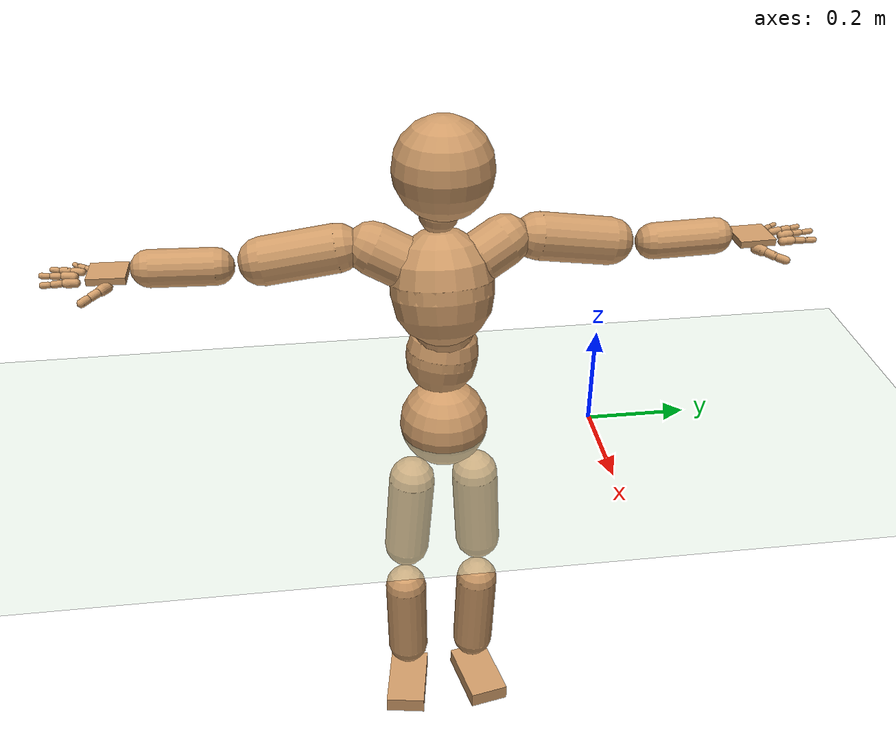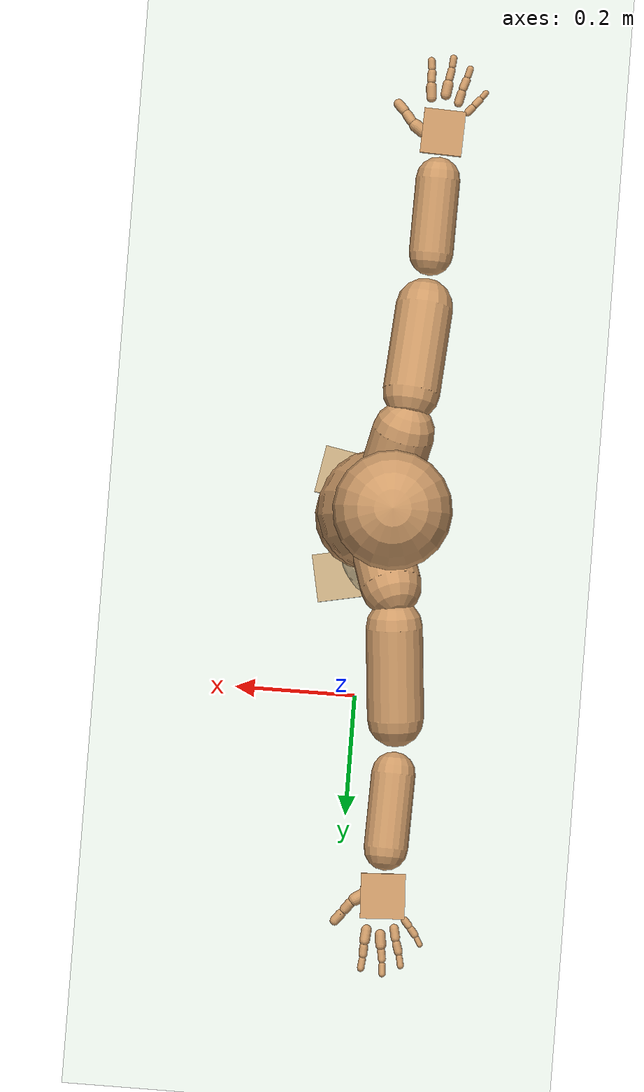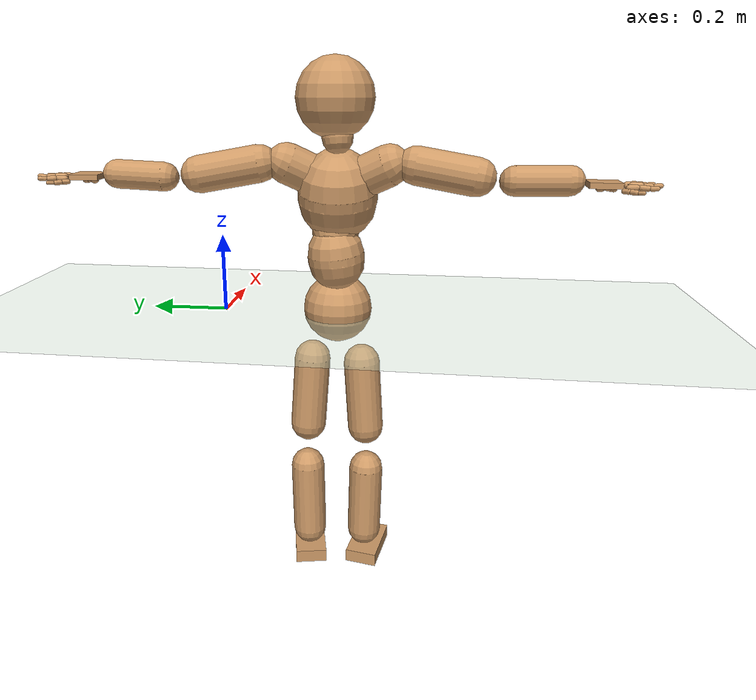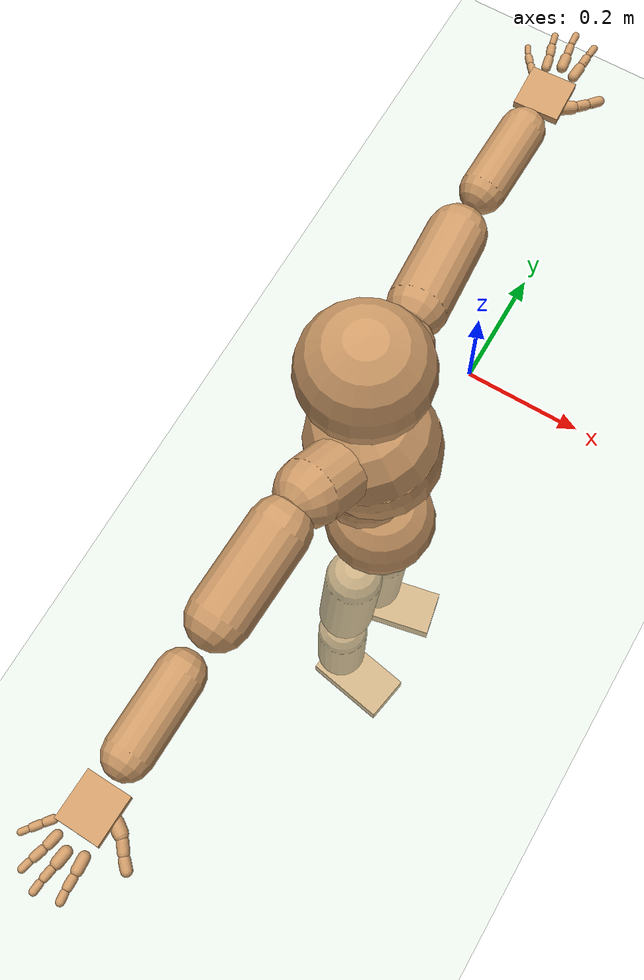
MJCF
<mujoco model="humanoid">
  <compiler coordinate="local" angle="radian"/>
  <default>
    <joint damping="0.0" armature="0.01" stiffness="0.0" limited="true"/>
    <geom conaffinity="1" condim="3" contype="7" margin="0.001" rgba="0.8 0.6 .4 1"/>
  </default>
  <asset>
    <texture type="skybox" builtin="gradient" rgb1=".4 .5 .6" rgb2="0 0 0" width="100" height="100"/>
    <texture builtin="flat" height="1278" mark="cross" markrgb="1 1 1" name="texgeom" random="0.01" rgb1="0.8 0.6 0.4" rgb2="0.8 0.6 0.4" type="cube" width="127"/>
    <texture builtin="checker" height="100" name="texplane" rgb1="0 0 0" rgb2="0.8 0.8 0.8" type="2d" width="100"/>
    <material name="MatPlane" reflectance="0.5" shininess="1" specular="1" texrepeat="60 60" texture="texplane"/>
    <material name="geom" texture="texgeom" texuniform="true"/>
  </asset>
  <worldbody>
    <light cutoff="100" diffuse="1 1 1" dir="-0 0 -1.3" directional="true" exponent="1" pos="0 0 1.3" specular=".1 .1 .1"/>
    <geom conaffinity="1" condim="3" name="floor" pos="0 0 0" rgba="0.8 0.9 0.8 1" size="100 100 .2" type="plane" material="MatPlane"/>
    <body name="Pelvis" pos="0.0002 -0.3025 0.017">
      <freejoint name="Pelvis"/>
      <geom type="sphere" contype="1" conaffinity="1" density="500" size="0.0896" pos="0.0000 0.0000 0.0000" name="Pelvis"/>
      <body name="L_Hip" pos="-0.0046 0.0632 -0.0802">
        <joint name="L_Hip_x" type="hinge" pos="0 0 0" axis="1 0 0" stiffness="800" damping="80" armature="0.02" range="-180.0000 180.0000"/>
        <joint name="L_Hip_y" type="hinge" pos="0 0 0" axis="0 1 0" stiffness="800" damping="80" armature="0.02" range="-180.0000 180.0000"/>
        <joint name="L_Hip_z" type="hinge" pos="0 0 0" axis="0 0 1" stiffness="800" damping="80" armature="0.02" range="-180.0000 180.0000"/>
        <geom type="capsule" contype="1" conaffinity="1" density="500" fromto="-0.0037 0.0038 -0.0629 -0.0148 0.0153 -0.2518" size="0.0482" name="L_Hip"/>
        <body name="L_Knee" pos="-0.0186 0.0192 -0.3147">
          <joint name="L_Knee_x" type="hinge" pos="0 0 0" axis="1 0 0" stiffness="800" damping="80" armature="0.02" range="-180.0000 180.0000"/>
          <joint name="L_Knee_y" type="hinge" pos="0 0 0" axis="0 1 0" stiffness="800" damping="80" armature="0.02" range="-180.0000 180.0000"/>
          <joint name="L_Knee_z" type="hinge" pos="0 0 0" axis="0 0 1" stiffness="800" damping="80" armature="0.02" range="-180.0000 180.0000"/>
          <geom type="capsule" contype="1" conaffinity="1" density="500" fromto="-0.0027 -0.0018 -0.0662 -0.0110 -0.0071 -0.2647" size="0.0459" name="L_Knee"/>
          <body name="L_Ankle" pos="-0.0137 -0.0089 -0.3309">
            <joint name="L_Ankle_x" type="hinge" pos="0 0 0" axis="1 0 0" stiffness="800" damping="80" armature="0.02" range="-180.0000 180.0000"/>
            <joint name="L_Ankle_y" type="hinge" pos="0 0 0" axis="0 1 0" stiffness="800" damping="80" armature="0.02" range="-180.0000 180.0000"/>
            <joint name="L_Ankle_z" type="hinge" pos="0 0 0" axis="0 0 1" stiffness="800" damping="80" armature="0.02" range="-180.0000 180.0000"/>
            <geom type="box" contype="1" conaffinity="1" density="500" pos="0.0488 0.0100 -0.0192" size="0.0767 0.0433 0.0181" quat="0.9949 0.0000 0.0000 0.1011" name="L_Ankle"/>
            <body name="L_Toe" pos="0.0976 0.02 -0.0383">
              <joint name="L_Toe_x" type="hinge" pos="0 0 0" axis="1 0 0" stiffness="500" damping="50" armature="0.02" range="-180.0000 180.0000"/>
              <joint name="L_Toe_y" type="hinge" pos="0 0 0" axis="0 1 0" stiffness="500" damping="50" armature="0.02" range="-180.0000 180.0000"/>
              <joint name="L_Toe_z" type="hinge" pos="0 0 0" axis="0 0 1" stiffness="500" damping="50" armature="0.02" range="-180.0000 180.0000"/>
              <geom type="box" contype="1" conaffinity="1" density="500" pos="0.0000 0.0000 0.0204" size="0.0009 0.0022 0.001" quat="0.9941 0.0000 0.0000 0.1087" name="L_Toe"/>
            </body>
          </body>
        </body>
      </body>
      <body name="R_Hip" pos="-0.0063 -0.0618 -0.0862">
        <joint name="R_Hip_x" type="hinge" pos="0 0 0" axis="1 0 0" stiffness="800" damping="80" armature="0.02" range="-180.0000 180.0000"/>
        <joint name="R_Hip_y" type="hinge" pos="0 0 0" axis="0 1 0" stiffness="800" damping="80" armature="0.02" range="-180.0000 180.0000"/>
        <joint name="R_Hip_z" type="hinge" pos="0 0 0" axis="0 0 1" stiffness="800" damping="80" armature="0.02" range="-180.0000 180.0000"/>
        <geom type="capsule" contype="1" conaffinity="1" density="500" fromto="-0.0026 -0.0045 -0.0621 -0.0103 -0.0181 -0.2485" size="0.048" name="R_Hip"/>
        <body name="R_Knee" pos="-0.0129 -0.0226 -0.3106">
          <joint name="R_Knee_x" type="hinge" pos="0 0 0" axis="1 0 0" stiffness="800" damping="80" armature="0.02" range="-180.0000 180.0000"/>
          <joint name="R_Knee_y" type="hinge" pos="0 0 0" axis="0 1 0" stiffness="800" damping="80" armature="0.02" range="-180.0000 180.0000"/>
          <joint name="R_Knee_z" type="hinge" pos="0 0 0" axis="0 0 1" stiffness="800" damping="80" armature="0.02" range="-180.0000 180.0000"/>
          <geom type="capsule" contype="1" conaffinity="1" density="500" fromto="-0.0019 0.0009 -0.0646 -0.0078 0.0036 -0.2583" size="0.0459" name="R_Knee"/>
          <body name="R_Ankle" pos="-0.0097 0.0044 -0.3229">
            <joint name="R_Ankle_x" type="hinge" pos="0 0 0" axis="1 0 0" stiffness="800" damping="80" armature="0.02" range="-180.0000 180.0000"/>
            <joint name="R_Ankle_y" type="hinge" pos="0 0 0" axis="0 1 0" stiffness="800" damping="80" armature="0.02" range="-180.0000 180.0000"/>
            <joint name="R_Ankle_z" type="hinge" pos="0 0 0" axis="0 0 1" stiffness="800" damping="80" armature="0.02" range="-180.0000 180.0000"/>
            <geom type="box" contype="1" conaffinity="1" density="500" pos="0.0459 -0.0082 -0.0209" size="0.0767 0.0433 0.0181" quat="0.9961 0.0000 0.0000 -0.0887" name="R_Ankle"/>
            <body name="R_Toe" pos="0.0917 -0.0165 -0.0418">
              <joint name="R_Toe_x" type="hinge" pos="0 0 0" axis="1 0 0" stiffness="500" damping="50" armature="0.02" range="-180.0000 180.0000"/>
              <joint name="R_Toe_y" type="hinge" pos="0 0 0" axis="0 1 0" stiffness="500" damping="50" armature="0.02" range="-180.0000 180.0000"/>
              <joint name="R_Toe_z" type="hinge" pos="0 0 0" axis="0 0 1" stiffness="500" damping="50" armature="0.02" range="-180.0000 180.0000"/>
              <geom type="box" contype="1" conaffinity="1" density="500" pos="0.0000 0.0000 0.0222" size="0.0009 0.0022 0.001" quat="0.9971 0.0000 0.0000 -0.0765" name="R_Toe"/>
            </body>
          </body>
        </body>
      </body>
      <body name="Torso" pos="-0.0278 -0.0051 0.0904">
        <joint name="Torso_x" type="hinge" pos="0 0 0" axis="1 0 0" stiffness="1000" damping="100" armature="0.02" range="-180.0000 180.0000"/>
        <joint name="Torso_y" type="hinge" pos="0 0 0" axis="0 1 0" stiffness="1000" damping="100" armature="0.02" range="-180.0000 180.0000"/>
        <joint name="Torso_z" type="hinge" pos="0 0 0" axis="0 0 1" stiffness="1000" damping="100" armature="0.02" range="-180.0000 180.0000"/>
        <geom type="capsule" contype="1" conaffinity="1" density="500" fromto="-0.0043 0.0065 0.0622 -0.0029 0.0043 0.0415" size="0.0718" name="Torso"/>
        <body name="Spine" pos="-0.0072 0.0108 0.1036">
          <joint name="Spine_x" type="hinge" pos="0 0 0" axis="1 0 0" stiffness="1000" damping="100" armature="0.02" range="-180.0000 180.0000"/>
          <joint name="Spine_y" type="hinge" pos="0 0 0" axis="0 1 0" stiffness="1000" damping="100" armature="0.02" range="-180.0000 180.0000"/>
          <joint name="Spine_z" type="hinge" pos="0 0 0" axis="0 0 1" stiffness="1000" damping="100" armature="0.02" range="-180.0000 180.0000"/>
          <geom type="capsule" contype="1" conaffinity="1" density="500" fromto="0.0206 -0.0037 0.0233 0.0137 -0.0025 0.0155" size="0.0597" name="Spine"/>
          <body name="Chest" pos="0.0343 -0.0062 0.0388">
            <joint name="Chest_x" type="hinge" pos="0 0 0" axis="1 0 0" stiffness="1000" damping="100" armature="0.02" range="-180.0000 180.0000"/>
            <joint name="Chest_y" type="hinge" pos="0 0 0" axis="0 1 0" stiffness="1000" damping="100" armature="0.02" range="-180.0000 180.0000"/>
            <joint name="Chest_z" type="hinge" pos="0 0 0" axis="0 0 1" stiffness="1000" damping="100" armature="0.02" range="-180.0000 180.0000"/>
            <geom type="capsule" contype="1" conaffinity="1" density="500" fromto="-0.0195 -0.0016 0.0778 -0.0130 -0.0011 0.0519" size="0.0996" name="Chest"/>
            <body name="Neck" pos="-0.048 -0.0058 0.1781">
              <joint name="Neck_x" type="hinge" pos="0 0 0" axis="1 0 0" stiffness="500" damping="50" armature="0.02" range="-180.0000 180.0000"/>
              <joint name="Neck_y" type="hinge" pos="0 0 0" axis="0 1 0" stiffness="500" damping="50" armature="0.02" range="-180.0000 180.0000"/>
              <joint name="Neck_z" type="hinge" pos="0 0 0" axis="0 0 1" stiffness="500" damping="50" armature="0.02" range="-180.0000 180.0000"/>
              <geom type="capsule" contype="1" conaffinity="1" density="500" fromto="0.0025 0.0018 0.0227 0.0099 0.0072 0.0909" size="0.0381" name="Neck"/>
              <body name="Head" pos="0.0124 0.009 0.1136">
                <joint name="Head_x" type="hinge" pos="0 0 0" axis="1 0 0" stiffness="500" damping="50" armature="0.02" range="-180.0000 180.0000"/>
                <joint name="Head_y" type="hinge" pos="0 0 0" axis="0 1 0" stiffness="500" damping="50" armature="0.02" range="-180.0000 180.0000"/>
                <joint name="Head_z" type="hinge" pos="0 0 0" axis="0 0 1" stiffness="500" damping="50" armature="0.02" range="-180.0000 180.0000"/>
                <geom type="sphere" contype="1" conaffinity="1" density="500" size="0.0952" pos="0.0000 0.0000 0.0000" name="Head"/>
              </body>
            </body>
            <body name="L_Thorax" pos="-0.0215 0.0528 0.1073">
              <joint name="L_Thorax_x" type="hinge" pos="0 0 0" axis="1 0 0" stiffness="500" damping="50" armature="0.02" range="-180.0000 180.0000"/>
              <joint name="L_Thorax_y" type="hinge" pos="0 0 0" axis="0 1 0" stiffness="500" damping="50" armature="0.02" range="-180.0000 180.0000"/>
              <joint name="L_Thorax_z" type="hinge" pos="0 0 0" axis="0 0 1" stiffness="500" damping="50" armature="0.02" range="-180.0000 180.0000"/>
              <geom type="capsule" contype="1" conaffinity="1" density="500" fromto="-0.0056 0.0169 0.0083 -0.0223 0.0675 0.0334" size="0.0496" name="L_Thorax"/>
              <body name="L_Shoulder" pos="-0.0279 0.0844 0.0417">
                <joint name="L_Shoulder_x" type="hinge" pos="0 0 0" axis="1 0 0" stiffness="500" damping="50" armature="0.02" range="-180.0000 180.0000"/>
                <joint name="L_Shoulder_y" type="hinge" pos="0 0 0" axis="0 1 0" stiffness="500" damping="50" armature="0.02" range="-180.0000 180.0000"/>
                <joint name="L_Shoulder_z" type="hinge" pos="0 0 0" axis="0 0 1" stiffness="500" damping="50" armature="0.02" range="-180.0000 180.0000"/>
                <geom type="capsule" contype="1" conaffinity="1" density="500" fromto="-0.0046 0.0486 -0.0087 -0.0184 0.1946 -0.0348" size="0.046" name="L_Shoulder"/>
                <body name="L_Elbow" pos="-0.023 0.2432 -0.0435">
                  <joint name="L_Elbow_x" type="hinge" pos="0 0 0" axis="1 0 0" stiffness="500" damping="50" armature="0.02" range="-720.0000 720.0000"/>
                  <joint name="L_Elbow_y" type="hinge" pos="0 0 0" axis="0 1 0" stiffness="500" damping="50" armature="0.02" range="-720.0000 720.0000"/>
                  <joint name="L_Elbow_z" type="hinge" pos="0 0 0" axis="0 0 1" stiffness="500" damping="50" armature="0.02" range="-720.0000 720.0000"/>
                  <geom type="capsule" contype="1" conaffinity="1" density="500" fromto="0.0010 0.0402 0.0016 0.0038 0.1606 0.0064" size="0.0356" name="L_Elbow"/>
                  <body name="L_Wrist" pos="0.0048 0.2008 0.008">
                    <joint name="L_Wrist_x" type="hinge" pos="0 0 0" axis="1 0 0" stiffness="300" damping="30" armature="0.02" range="-180.0000 180.0000"/>
                    <joint name="L_Wrist_y" type="hinge" pos="0 0 0" axis="0 1 0" stiffness="300" damping="30" armature="0.02" range="-180.0000 180.0000"/>
                    <joint name="L_Wrist_z" type="hinge" pos="0 0 0" axis="0 0 1" stiffness="300" damping="30" armature="0.02" range="-180.0000 180.0000"/>
                    <geom type="box" contype="1" conaffinity="1" density="500" pos="-0.0019 0.0368 -0.0073" size="0.0362 0.0358 0.0066" quat="0.7253 0.0000 0.0000 -0.6884" name="L_Wrist"/>
                    <body name="L_Index1" pos="0.0194 0.0871 -0.0125">
                      <joint name="L_Index1_x" type="hinge" pos="0 0 0" axis="1 0 0" stiffness="100" damping="10" armature="0.02" range="-180.0000 180.0000"/>
                      <joint name="L_Index1_y" type="hinge" pos="0 0 0" axis="0 1 0" stiffness="100" damping="10" armature="0.02" range="-180.0000 180.0000"/>
                      <joint name="L_Index1_z" type="hinge" pos="0 0 0" axis="0 0 1" stiffness="100" damping="10" armature="0.02" range="-180.0000 180.0000"/>
                      <geom type="capsule" contype="1" conaffinity="1" density="500" fromto="0.0005 0.0058 0.0005 0.0021 0.0233 0.0020" size="0.0084" name="L_Index1"/>
                      <body name="L_Index2" pos="0.0026 0.0291 0.0025">
                        <joint name="L_Index2_x" type="hinge" pos="0 0 0" axis="1 0 0" stiffness="100" damping="10" armature="0.02" range="-180.0000 180.0000"/>
                        <joint name="L_Index2_y" type="hinge" pos="0 0 0" axis="0 1 0" stiffness="100" damping="10" armature="0.02" range="-180.0000 180.0000"/>
                        <joint name="L_Index2_z" type="hinge" pos="0 0 0" axis="0 0 1" stiffness="100" damping="10" armature="0.02" range="-180.0000 180.0000"/>
                        <geom type="capsule" contype="1" conaffinity="1" density="500" fromto="0.0001 0.0041 -0.0002 0.0003 0.0165 -0.0010" size="0.0069" name="L_Index2"/>
                        <body name="L_Index3" pos="0.0004 0.0206 -0.0012">
                          <joint name="L_Index3_x" type="hinge" pos="0 0 0" axis="1 0 0" stiffness="100" damping="10" armature="0.02" range="-180.0000 180.0000"/>
                          <joint name="L_Index3_y" type="hinge" pos="0 0 0" axis="0 1 0" stiffness="100" damping="10" armature="0.02" range="-180.0000 180.0000"/>
                          <joint name="L_Index3_z" type="hinge" pos="0 0 0" axis="0 0 1" stiffness="100" damping="10" armature="0.02" range="-180.0000 180.0000"/>
                          <geom type="capsule" contype="1" conaffinity="1" density="500" fromto="0.0005 0.0045 0.0002 0.0019 0.0181 0.0006" size="0.0058" name="L_Index3"/>
                        </body>
                      </body>
                    </body>
                    <body name="L_Middle1" pos="-0.002 0.0934 -0.0105">
                      <joint name="L_Middle1_x" type="hinge" pos="0 0 0" axis="1 0 0" stiffness="100" damping="10" armature="0.02" range="-180.0000 180.0000"/>
                      <joint name="L_Middle1_y" type="hinge" pos="0 0 0" axis="0 1 0" stiffness="100" damping="10" armature="0.02" range="-180.0000 180.0000"/>
                      <joint name="L_Middle1_z" type="hinge" pos="0 0 0" axis="0 0 1" stiffness="100" damping="10" armature="0.02" range="-180.0000 180.0000"/>
                      <geom type="capsule" contype="1" conaffinity="1" density="500" fromto="-0.0008 0.0055 0.0002 -0.0030 0.0222 0.0009" size="0.0086" name="L_Middle1"/>
                      <body name="L_Middle2" pos="-0.0038 0.0277 0.0012">
                        <joint name="L_Middle2_x" type="hinge" pos="0 0 0" axis="1 0 0" stiffness="100" damping="10" armature="0.02" range="-180.0000 180.0000"/>
                        <joint name="L_Middle2_y" type="hinge" pos="0 0 0" axis="0 1 0" stiffness="100" damping="10" armature="0.02" range="-180.0000 180.0000"/>
                        <joint name="L_Middle2_z" type="hinge" pos="0 0 0" axis="0 0 1" stiffness="100" damping="10" armature="0.02" range="-180.0000 180.0000"/>
                        <geom type="capsule" contype="1" conaffinity="1" density="500" fromto="-0.0007 0.0043 -0.0001 -0.0029 0.0172 -0.0004" size="0.0064" name="L_Middle2"/>
                        <body name="L_Middle3" pos="-0.0036 0.0215 -0.0005">
                          <joint name="L_Middle3_x" type="hinge" pos="0 0 0" axis="1 0 0" stiffness="100" damping="10" armature="0.02" range="-180.0000 180.0000"/>
                          <joint name="L_Middle3_y" type="hinge" pos="0 0 0" axis="0 1 0" stiffness="100" damping="10" armature="0.02" range="-180.0000 180.0000"/>
                          <joint name="L_Middle3_z" type="hinge" pos="0 0 0" axis="0 0 1" stiffness="100" damping="10" armature="0.02" range="-180.0000 180.0000"/>
                          <geom type="capsule" contype="1" conaffinity="1" density="500" fromto="-0.0003 0.0047 0.0003 -0.0013 0.0188 0.0012" size="0.0055" name="L_Middle3"/>
                        </body>
                      </body>
                    </body>
                    <body name="L_Pinky1" pos="-0.038 0.0706 -0.0175">
                      <joint name="L_Pinky1_x" type="hinge" pos="0 0 0" axis="1 0 0" stiffness="100" damping="10" armature="0.02" range="-180.0000 180.0000"/>
                      <joint name="L_Pinky1_y" type="hinge" pos="0 0 0" axis="0 1 0" stiffness="100" damping="10" armature="0.02" range="-180.0000 180.0000"/>
                      <joint name="L_Pinky1_z" type="hinge" pos="0 0 0" axis="0 0 1" stiffness="100" damping="10" armature="0.02" range="-180.0000 180.0000"/>
                      <geom type="capsule" contype="1" conaffinity="1" density="500" fromto="-0.0023 0.0027 -0.0001 -0.0092 0.0108 -0.0002" size="0.0062" name="L_Pinky1"/>
                      <body name="L_Pinky2" pos="-0.0114 0.0135 -0.0003">
                        <joint name="L_Pinky2_x" type="hinge" pos="0 0 0" axis="1 0 0" stiffness="100" damping="10" armature="0.02" range="-180.0000 180.0000"/>
                        <joint name="L_Pinky2_y" type="hinge" pos="0 0 0" axis="0 1 0" stiffness="100" damping="10" armature="0.02" range="-180.0000 180.0000"/>
                        <joint name="L_Pinky2_z" type="hinge" pos="0 0 0" axis="0 0 1" stiffness="100" damping="10" armature="0.02" range="-180.0000 180.0000"/>
                        <geom type="capsule" contype="1" conaffinity="1" density="500" fromto="-0.0022 0.0028 -0.0002 -0.0087 0.0110 -0.0006" size="0.0061" name="L_Pinky2"/>
                        <body name="L_Pinky3" pos="-0.0109 0.0138 -0.0008">
                          <joint name="L_Pinky3_x" type="hinge" pos="0 0 0" axis="1 0 0" stiffness="100" damping="10" armature="0.02" range="-180.0000 180.0000"/>
                          <joint name="L_Pinky3_y" type="hinge" pos="0 0 0" axis="0 1 0" stiffness="100" damping="10" armature="0.02" range="-180.0000 180.0000"/>
                          <joint name="L_Pinky3_z" type="hinge" pos="0 0 0" axis="0 0 1" stiffness="100" damping="10" armature="0.02" range="-180.0000 180.0000"/>
                          <geom type="capsule" contype="1" conaffinity="1" density="500" fromto="-0.0018 0.0032 0.0002 -0.0071 0.0126 0.0010" size="0.0046" name="L_Pinky3"/>
                        </body>
                      </body>
                    </body>
                    <body name="L_Ring1" pos="-0.0234 0.0825 -0.0129">
                      <joint name="L_Ring1_x" type="hinge" pos="0 0 0" axis="1 0 0" stiffness="100" damping="10" armature="0.02" range="-180.0000 180.0000"/>
                      <joint name="L_Ring1_y" type="hinge" pos="0 0 0" axis="0 1 0" stiffness="100" damping="10" armature="0.02" range="-180.0000 180.0000"/>
                      <joint name="L_Ring1_z" type="hinge" pos="0 0 0" axis="0 0 1" stiffness="100" damping="10" armature="0.02" range="-180.0000 180.0000"/>
                      <geom type="capsule" contype="1" conaffinity="1" density="500" fromto="-0.0010 0.0050 0.0003 -0.0042 0.0201 0.0012" size="0.0074" name="L_Ring1"/>
                      <body name="L_Ring2" pos="-0.0052 0.0252 0.0015">
                        <joint name="L_Ring2_x" type="hinge" pos="0 0 0" axis="1 0 0" stiffness="100" damping="10" armature="0.02" range="-180.0000 180.0000"/>
                        <joint name="L_Ring2_y" type="hinge" pos="0 0 0" axis="0 1 0" stiffness="100" damping="10" armature="0.02" range="-180.0000 180.0000"/>
                        <joint name="L_Ring2_z" type="hinge" pos="0 0 0" axis="0 0 1" stiffness="100" damping="10" armature="0.02" range="-180.0000 180.0000"/>
                        <geom type="capsule" contype="1" conaffinity="1" density="500" fromto="-0.0013 0.0041 -0.0002 -0.0054 0.0165 -0.0007" size="0.0069" name="L_Ring2"/>
                        <body name="L_Ring3" pos="-0.0067 0.0206 -0.0009">
                          <joint name="L_Ring3_x" type="hinge" pos="0 0 0" axis="1 0 0" stiffness="100" damping="10" armature="0.02" range="-180.0000 180.0000"/>
                          <joint name="L_Ring3_y" type="hinge" pos="0 0 0" axis="0 1 0" stiffness="100" damping="10" armature="0.02" range="-180.0000 180.0000"/>
                          <joint name="L_Ring3_z" type="hinge" pos="0 0 0" axis="0 0 1" stiffness="100" damping="10" armature="0.02" range="-180.0000 180.0000"/>
                          <geom type="capsule" contype="1" conaffinity="1" density="500" fromto="-0.0009 0.0045 0.0002 -0.0038 0.0181 0.0009" size="0.0053" name="L_Ring3"/>
                        </body>
                      </body>
                    </body>
                    <body name="L_Thumb1" pos="0.0248 0.0343 -0.0193">
                      <joint name="L_Thumb1_x" type="hinge" pos="0 0 0" axis="1 0 0" stiffness="100" damping="10" armature="0.02" range="-180.0000 180.0000"/>
                      <joint name="L_Thumb1_y" type="hinge" pos="0 0 0" axis="0 1 0" stiffness="100" damping="10" armature="0.02" range="-180.0000 180.0000"/>
                      <joint name="L_Thumb1_z" type="hinge" pos="0 0 0" axis="0 0 1" stiffness="100" damping="10" armature="0.02" range="-180.0000 180.0000"/>
                      <geom type="capsule" contype="1" conaffinity="1" density="500" fromto="0.0044 0.0030 0.0001 0.0175 0.0118 0.0006" size="0.0105" name="L_Thumb1"/>
                      <body name="L_Thumb2" pos="0.0219 0.0148 0.0007">
                        <joint name="L_Thumb2_x" type="hinge" pos="0 0 0" axis="1 0 0" stiffness="100" damping="10" armature="0.02" range="-180.0000 180.0000"/>
                        <joint name="L_Thumb2_y" type="hinge" pos="0 0 0" axis="0 1 0" stiffness="100" damping="10" armature="0.02" range="-180.0000 180.0000"/>
                        <joint name="L_Thumb2_z" type="hinge" pos="0 0 0" axis="0 0 1" stiffness="100" damping="10" armature="0.02" range="-180.0000 180.0000"/>
                        <geom type="capsule" contype="1" conaffinity="1" density="500" fromto="0.0026 0.0036 -0.0011 0.0105 0.0143 -0.0043" size="0.0083" name="L_Thumb2"/>
                        <body name="L_Thumb3" pos="0.0131 0.0178 -0.0054">
                          <joint name="L_Thumb3_x" type="hinge" pos="0 0 0" axis="1 0 0" stiffness="100" damping="10" armature="0.02" range="-180.0000 180.0000"/>
                          <joint name="L_Thumb3_y" type="hinge" pos="0 0 0" axis="0 1 0" stiffness="100" damping="10" armature="0.02" range="-180.0000 180.0000"/>
                          <joint name="L_Thumb3_z" type="hinge" pos="0 0 0" axis="0 0 1" stiffness="100" damping="10" armature="0.02" range="-180.0000 180.0000"/>
                          <geom type="capsule" contype="1" conaffinity="1" density="500" fromto="0.0030 0.0040 -0.0007 0.0121 0.0159 -0.0027" size="0.008" name="L_Thumb3"/>
                        </body>
                      </body>
                    </body>
                  </body>
                </body>
              </body>
            </body>
            <body name="R_Thorax" pos="-0.0277 -0.0551 0.1039">
              <joint name="R_Thorax_x" type="hinge" pos="0 0 0" axis="1 0 0" stiffness="500" damping="50" armature="0.02" range="-180.0000 180.0000"/>
              <joint name="R_Thorax_y" type="hinge" pos="0 0 0" axis="0 1 0" stiffness="500" damping="50" armature="0.02" range="-180.0000 180.0000"/>
              <joint name="R_Thorax_z" type="hinge" pos="0 0 0" axis="0 0 1" stiffness="500" damping="50" armature="0.02" range="-180.0000 180.0000"/>
              <geom type="capsule" contype="1" conaffinity="1" density="500" fromto="-0.0042 -0.0182 0.0087 -0.0167 -0.0726 0.0349" size="0.0508" name="R_Thorax"/>
              <body name="R_Shoulder" pos="-0.0209 -0.0908 0.0436">
                <joint name="R_Shoulder_x" type="hinge" pos="0 0 0" axis="1 0 0" stiffness="500" damping="50" armature="0.02" range="-180.0000 180.0000"/>
                <joint name="R_Shoulder_y" type="hinge" pos="0 0 0" axis="0 1 0" stiffness="500" damping="50" armature="0.02" range="-180.0000 180.0000"/>
                <joint name="R_Shoulder_z" type="hinge" pos="0 0 0" axis="0 0 1" stiffness="500" damping="50" armature="0.02" range="-180.0000 180.0000"/>
                <geom type="capsule" contype="1" conaffinity="1" density="500" fromto="-0.0034 -0.0468 -0.0077 -0.0138 -0.1871 -0.0310" size="0.0464" name="R_Shoulder"/>
                <body name="R_Elbow" pos="-0.0172 -0.2339 -0.0387">
                  <joint name="R_Elbow_x" type="hinge" pos="0 0 0" axis="1 0 0" stiffness="500" damping="50" armature="0.02" range="-720.0000 720.0000"/>
                  <joint name="R_Elbow_y" type="hinge" pos="0 0 0" axis="0 1 0" stiffness="500" damping="50" armature="0.02" range="-720.0000 720.0000"/>
                  <joint name="R_Elbow_z" type="hinge" pos="0 0 0" axis="0 0 1" stiffness="500" damping="50" armature="0.02" range="-720.0000 720.0000"/>
                  <geom type="capsule" contype="1" conaffinity="1" density="500" fromto="-0.0006 -0.0403 0.0008 -0.0025 -0.1611 0.0031" size="0.0358" name="R_Elbow"/>
                  <body name="R_Wrist" pos="-0.0031 -0.2014 0.0038">
                    <joint name="R_Wrist_x" type="hinge" pos="0 0 0" axis="1 0 0" stiffness="300" damping="30" armature="0.02" range="-180.0000 180.0000"/>
                    <joint name="R_Wrist_y" type="hinge" pos="0 0 0" axis="0 1 0" stiffness="300" damping="30" armature="0.02" range="-180.0000 180.0000"/>
                    <joint name="R_Wrist_z" type="hinge" pos="0 0 0" axis="0 0 1" stiffness="300" damping="30" armature="0.02" range="-180.0000 180.0000"/>
                    <geom type="box" contype="1" conaffinity="1" density="500" pos="-0.0013 -0.0364 -0.0069" size="0.0362 0.0335 0.0068" quat="0.7196 0.0000 0.0000 0.6944" name="R_Wrist"/>
                    <body name="R_Index1" pos="0.0207 -0.0863 -0.0117">
                      <joint name="R_Index1_x" type="hinge" pos="0 0 0" axis="1 0 0" stiffness="100" damping="10" armature="0.02" range="-180.0000 180.0000"/>
                      <joint name="R_Index1_y" type="hinge" pos="0 0 0" axis="0 1 0" stiffness="100" damping="10" armature="0.02" range="-180.0000 180.0000"/>
                      <joint name="R_Index1_z" type="hinge" pos="0 0 0" axis="0 0 1" stiffness="100" damping="10" armature="0.02" range="-180.0000 180.0000"/>
                      <geom type="capsule" contype="1" conaffinity="1" density="500" fromto="0.0005 -0.0058 0.0005 0.0021 -0.0233 0.0020" size="0.0084" name="R_Index1"/>
                      <body name="R_Index2" pos="0.0026 -0.0291 0.0025">
                        <joint name="R_Index2_x" type="hinge" pos="0 0 0" axis="1 0 0" stiffness="100" damping="10" armature="0.02" range="-180.0000 180.0000"/>
                        <joint name="R_Index2_y" type="hinge" pos="0 0 0" axis="0 1 0" stiffness="100" damping="10" armature="0.02" range="-180.0000 180.0000"/>
                        <joint name="R_Index2_z" type="hinge" pos="0 0 0" axis="0 0 1" stiffness="100" damping="10" armature="0.02" range="-180.0000 180.0000"/>
                        <geom type="capsule" contype="1" conaffinity="1" density="500" fromto="0.0001 -0.0041 -0.0002 0.0003 -0.0165 -0.0010" size="0.0069" name="R_Index2"/>
                        <body name="R_Index3" pos="0.0004 -0.0206 -0.0012">
                          <joint name="R_Index3_x" type="hinge" pos="0 0 0" axis="1 0 0" stiffness="100" damping="10" armature="0.02" range="-180.0000 180.0000"/>
                          <joint name="R_Index3_y" type="hinge" pos="0 0 0" axis="0 1 0" stiffness="100" damping="10" armature="0.02" range="-180.0000 180.0000"/>
                          <joint name="R_Index3_z" type="hinge" pos="0 0 0" axis="0 0 1" stiffness="100" damping="10" armature="0.02" range="-180.0000 180.0000"/>
                          <geom type="capsule" contype="1" conaffinity="1" density="500" fromto="0.0005 -0.0037 0.0002 0.0019 -0.0149 0.0006" size="0.0061" name="R_Index3"/>
                        </body>
                      </body>
                    </body>
                    <body name="R_Middle1" pos="-0.0008 -0.0926 -0.0097">
                      <joint name="R_Middle1_x" type="hinge" pos="0 0 0" axis="1 0 0" stiffness="100" damping="10" armature="0.02" range="-180.0000 180.0000"/>
                      <joint name="R_Middle1_y" type="hinge" pos="0 0 0" axis="0 1 0" stiffness="100" damping="10" armature="0.02" range="-180.0000 180.0000"/>
                      <joint name="R_Middle1_z" type="hinge" pos="0 0 0" axis="0 0 1" stiffness="100" damping="10" armature="0.02" range="-180.0000 180.0000"/>
                      <geom type="capsule" contype="1" conaffinity="1" density="500" fromto="-0.0008 -0.0055 0.0002 -0.0030 -0.0222 0.0009" size="0.0086" name="R_Middle1"/>
                      <body name="R_Middle2" pos="-0.0038 -0.0277 0.0012">
                        <joint name="R_Middle2_x" type="hinge" pos="0 0 0" axis="1 0 0" stiffness="100" damping="10" armature="0.02" range="-180.0000 180.0000"/>
                        <joint name="R_Middle2_y" type="hinge" pos="0 0 0" axis="0 1 0" stiffness="100" damping="10" armature="0.02" range="-180.0000 180.0000"/>
                        <joint name="R_Middle2_z" type="hinge" pos="0 0 0" axis="0 0 1" stiffness="100" damping="10" armature="0.02" range="-180.0000 180.0000"/>
                        <geom type="capsule" contype="1" conaffinity="1" density="500" fromto="-0.0007 -0.0043 -0.0001 -0.0029 -0.0172 -0.0004" size="0.0064" name="R_Middle2"/>
                        <body name="R_Middle3" pos="-0.0036 -0.0215 -0.0005">
                          <joint name="R_Middle3_x" type="hinge" pos="0 0 0" axis="1 0 0" stiffness="100" damping="10" armature="0.02" range="-180.0000 180.0000"/>
                          <joint name="R_Middle3_y" type="hinge" pos="0 0 0" axis="0 1 0" stiffness="100" damping="10" armature="0.02" range="-180.0000 180.0000"/>
                          <joint name="R_Middle3_z" type="hinge" pos="0 0 0" axis="0 0 1" stiffness="100" damping="10" armature="0.02" range="-180.0000 180.0000"/>
                          <geom type="capsule" contype="1" conaffinity="1" density="500" fromto="-0.0003 -0.0039 0.0003 -0.0013 -0.0156 0.0012" size="0.0058" name="R_Middle3"/>
                        </body>
                      </body>
                    </body>
                    <body name="R_Pinky1" pos="-0.0368 -0.0698 -0.0167">
                      <joint name="R_Pinky1_x" type="hinge" pos="0 0 0" axis="1 0 0" stiffness="100" damping="10" armature="0.02" range="-180.0000 180.0000"/>
                      <joint name="R_Pinky1_y" type="hinge" pos="0 0 0" axis="0 1 0" stiffness="100" damping="10" armature="0.02" range="-180.0000 180.0000"/>
                      <joint name="R_Pinky1_z" type="hinge" pos="0 0 0" axis="0 0 1" stiffness="100" damping="10" armature="0.02" range="-180.0000 180.0000"/>
                      <geom type="capsule" contype="1" conaffinity="1" density="500" fromto="-0.0023 -0.0027 -0.0001 -0.0092 -0.0108 -0.0002" size="0.0062" name="R_Pinky1"/>
                      <body name="R_Pinky2" pos="-0.0114 -0.0135 -0.0003">
                        <joint name="R_Pinky2_x" type="hinge" pos="0 0 0" axis="1 0 0" stiffness="100" damping="10" armature="0.02" range="-180.0000 180.0000"/>
                        <joint name="R_Pinky2_y" type="hinge" pos="0 0 0" axis="0 1 0" stiffness="100" damping="10" armature="0.02" range="-180.0000 180.0000"/>
                        <joint name="R_Pinky2_z" type="hinge" pos="0 0 0" axis="0 0 1" stiffness="100" damping="10" armature="0.02" range="-180.0000 180.0000"/>
                        <geom type="capsule" contype="1" conaffinity="1" density="500" fromto="-0.0022 -0.0028 -0.0002 -0.0087 -0.0110 -0.0006" size="0.0061" name="R_Pinky2"/>
                        <body name="R_Pinky3" pos="-0.0109 -0.0138 -0.0008">
                          <joint name="R_Pinky3_x" type="hinge" pos="0 0 0" axis="1 0 0" stiffness="100" damping="10" armature="0.02" range="-180.0000 180.0000"/>
                          <joint name="R_Pinky3_y" type="hinge" pos="0 0 0" axis="0 1 0" stiffness="100" damping="10" armature="0.02" range="-180.0000 180.0000"/>
                          <joint name="R_Pinky3_z" type="hinge" pos="0 0 0" axis="0 0 1" stiffness="100" damping="10" armature="0.02" range="-180.0000 180.0000"/>
                          <geom type="capsule" contype="1" conaffinity="1" density="500" fromto="-0.0018 -0.0024 0.0002 -0.0071 -0.0094 0.0010" size="0.0048" name="R_Pinky3"/>
                        </body>
                      </body>
                    </body>
                    <body name="R_Ring1" pos="-0.0221 -0.0816 -0.0121">
                      <joint name="R_Ring1_x" type="hinge" pos="0 0 0" axis="1 0 0" stiffness="100" damping="10" armature="0.02" range="-180.0000 180.0000"/>
                      <joint name="R_Ring1_y" type="hinge" pos="0 0 0" axis="0 1 0" stiffness="100" damping="10" armature="0.02" range="-180.0000 180.0000"/>
                      <joint name="R_Ring1_z" type="hinge" pos="0 0 0" axis="0 0 1" stiffness="100" damping="10" armature="0.02" range="-180.0000 180.0000"/>
                      <geom type="capsule" contype="1" conaffinity="1" density="500" fromto="-0.0010 -0.0050 0.0003 -0.0042 -0.0201 0.0012" size="0.0074" name="R_Ring1"/>
                      <body name="R_Ring2" pos="-0.0052 -0.0252 0.0015">
                        <joint name="R_Ring2_x" type="hinge" pos="0 0 0" axis="1 0 0" stiffness="100" damping="10" armature="0.02" range="-180.0000 180.0000"/>
                        <joint name="R_Ring2_y" type="hinge" pos="0 0 0" axis="0 1 0" stiffness="100" damping="10" armature="0.02" range="-180.0000 180.0000"/>
                        <joint name="R_Ring2_z" type="hinge" pos="0 0 0" axis="0 0 1" stiffness="100" damping="10" armature="0.02" range="-180.0000 180.0000"/>
                        <geom type="capsule" contype="1" conaffinity="1" density="500" fromto="-0.0013 -0.0041 -0.0002 -0.0054 -0.0165 -0.0007" size="0.0069" name="R_Ring2"/>
                        <body name="R_Ring3" pos="-0.0067 -0.0206 -0.0009">
                          <joint name="R_Ring3_x" type="hinge" pos="0 0 0" axis="1 0 0" stiffness="100" damping="10" armature="0.02" range="-180.0000 180.0000"/>
                          <joint name="R_Ring3_y" type="hinge" pos="0 0 0" axis="0 1 0" stiffness="100" damping="10" armature="0.02" range="-180.0000 180.0000"/>
                          <joint name="R_Ring3_z" type="hinge" pos="0 0 0" axis="0 0 1" stiffness="100" damping="10" armature="0.02" range="-180.0000 180.0000"/>
                          <geom type="capsule" contype="1" conaffinity="1" density="500" fromto="-0.0009 -0.0037 0.0002 -0.0038 -0.0149 0.0009" size="0.0056" name="R_Ring3"/>
                        </body>
                      </body>
                    </body>
                    <body name="R_Thumb1" pos="0.026 -0.0335 -0.0185">
                      <joint name="R_Thumb1_x" type="hinge" pos="0 0 0" axis="1 0 0" stiffness="100" damping="10" armature="0.02" range="-180.0000 180.0000"/>
                      <joint name="R_Thumb1_y" type="hinge" pos="0 0 0" axis="0 1 0" stiffness="100" damping="10" armature="0.02" range="-180.0000 180.0000"/>
                      <joint name="R_Thumb1_z" type="hinge" pos="0 0 0" axis="0 0 1" stiffness="100" damping="10" armature="0.02" range="-180.0000 180.0000"/>
                      <geom type="capsule" contype="1" conaffinity="1" density="500" fromto="0.0044 -0.0030 0.0001 0.0175 -0.0118 0.0006" size="0.0105" name="R_Thumb1"/>
                      <body name="R_Thumb2" pos="0.0219 -0.0148 0.0007">
                        <joint name="R_Thumb2_x" type="hinge" pos="0 0 0" axis="1 0 0" stiffness="100" damping="10" armature="0.02" range="-180.0000 180.0000"/>
                        <joint name="R_Thumb2_y" type="hinge" pos="0 0 0" axis="0 1 0" stiffness="100" damping="10" armature="0.02" range="-180.0000 180.0000"/>
                        <joint name="R_Thumb2_z" type="hinge" pos="0 0 0" axis="0 0 1" stiffness="100" damping="10" armature="0.02" range="-180.0000 180.0000"/>
                        <geom type="capsule" contype="1" conaffinity="1" density="500" fromto="0.0026 -0.0036 -0.0011 0.0105 -0.0143 -0.0043" size="0.0083" name="R_Thumb2"/>
                        <body name="R_Thumb3" pos="0.0131 -0.0178 -0.0054">
                          <joint name="R_Thumb3_x" type="hinge" pos="0 0 0" axis="1 0 0" stiffness="100" damping="10" armature="0.02" range="-180.0000 180.0000"/>
                          <joint name="R_Thumb3_y" type="hinge" pos="0 0 0" axis="0 1 0" stiffness="100" damping="10" armature="0.02" range="-180.0000 180.0000"/>
                          <joint name="R_Thumb3_z" type="hinge" pos="0 0 0" axis="0 0 1" stiffness="100" damping="10" armature="0.02" range="-180.0000 180.0000"/>
                          <geom type="capsule" contype="1" conaffinity="1" density="500" fromto="0.0030 -0.0032 -0.0007 0.0121 -0.0127 -0.0027" size="0.0082" name="R_Thumb3"/>
                        </body>
                      </body>
                    </body>
                  </body>
                </body>
              </body>
            </body>
          </body>
        </body>
      </body>
    </body>
  </worldbody>
  <actuator>
    <motor name="L_Hip_x" joint="L_Hip_x" gear="500"/>
    <motor name="L_Hip_y" joint="L_Hip_y" gear="500"/>
    <motor name="L_Hip_z" joint="L_Hip_z" gear="500"/>
    <motor name="L_Knee_x" joint="L_Knee_x" gear="500"/>
    <motor name="L_Knee_y" joint="L_Knee_y" gear="500"/>
    <motor name="L_Knee_z" joint="L_Knee_z" gear="500"/>
    <motor name="L_Ankle_x" joint="L_Ankle_x" gear="500"/>
    <motor name="L_Ankle_y" joint="L_Ankle_y" gear="500"/>
    <motor name="L_Ankle_z" joint="L_Ankle_z" gear="500"/>
    <motor name="L_Toe_x" joint="L_Toe_x" gear="500"/>
    <motor name="L_Toe_y" joint="L_Toe_y" gear="500"/>
    <motor name="L_Toe_z" joint="L_Toe_z" gear="500"/>
    <motor name="R_Hip_x" joint="R_Hip_x" gear="500"/>
    <motor name="R_Hip_y" joint="R_Hip_y" gear="500"/>
    <motor name="R_Hip_z" joint="R_Hip_z" gear="500"/>
    <motor name="R_Knee_x" joint="R_Knee_x" gear="500"/>
    <motor name="R_Knee_y" joint="R_Knee_y" gear="500"/>
    <motor name="R_Knee_z" joint="R_Knee_z" gear="500"/>
    <motor name="R_Ankle_x" joint="R_Ankle_x" gear="500"/>
    <motor name="R_Ankle_y" joint="R_Ankle_y" gear="500"/>
    <motor name="R_Ankle_z" joint="R_Ankle_z" gear="500"/>
    <motor name="R_Toe_x" joint="R_Toe_x" gear="500"/>
    <motor name="R_Toe_y" joint="R_Toe_y" gear="500"/>
    <motor name="R_Toe_z" joint="R_Toe_z" gear="500"/>
    <motor name="Torso_x" joint="Torso_x" gear="500"/>
    <motor name="Torso_y" joint="Torso_y" gear="500"/>
    <motor name="Torso_z" joint="Torso_z" gear="500"/>
    <motor name="Spine_x" joint="Spine_x" gear="500"/>
    <motor name="Spine_y" joint="Spine_y" gear="500"/>
    <motor name="Spine_z" joint="Spine_z" gear="500"/>
    <motor name="Chest_x" joint="Chest_x" gear="500"/>
    <motor name="Chest_y" joint="Chest_y" gear="500"/>
    <motor name="Chest_z" joint="Chest_z" gear="500"/>
    <motor name="Neck_x" joint="Neck_x" gear="500"/>
    <motor name="Neck_y" joint="Neck_y" gear="500"/>
    <motor name="Neck_z" joint="Neck_z" gear="500"/>
    <motor name="Head_x" joint="Head_x" gear="500"/>
    <motor name="Head_y" joint="Head_y" gear="500"/>
    <motor name="Head_z" joint="Head_z" gear="500"/>
    <motor name="L_Thorax_x" joint="L_Thorax_x" gear="500"/>
    <motor name="L_Thorax_y" joint="L_Thorax_y" gear="500"/>
    <motor name="L_Thorax_z" joint="L_Thorax_z" gear="500"/>
    <motor name="L_Shoulder_x" joint="L_Shoulder_x" gear="500"/>
    <motor name="L_Shoulder_y" joint="L_Shoulder_y" gear="500"/>
    <motor name="L_Shoulder_z" joint="L_Shoulder_z" gear="500"/>
    <motor name="L_Elbow_x" joint="L_Elbow_x" gear="500"/>
    <motor name="L_Elbow_y" joint="L_Elbow_y" gear="500"/>
    <motor name="L_Elbow_z" joint="L_Elbow_z" gear="500"/>
    <motor name="L_Wrist_x" joint="L_Wrist_x" gear="500"/>
    <motor name="L_Wrist_y" joint="L_Wrist_y" gear="500"/>
    <motor name="L_Wrist_z" joint="L_Wrist_z" gear="500"/>
    <motor name="L_Index1_x" joint="L_Index1_x" gear="500"/>
    <motor name="L_Index1_y" joint="L_Index1_y" gear="500"/>
    <motor name="L_Index1_z" joint="L_Index1_z" gear="500"/>
    <motor name="L_Index2_x" joint="L_Index2_x" gear="500"/>
    <motor name="L_Index2_y" joint="L_Index2_y" gear="500"/>
    <motor name="L_Index2_z" joint="L_Index2_z" gear="500"/>
    <motor name="L_Index3_x" joint="L_Index3_x" gear="500"/>
    <motor name="L_Index3_y" joint="L_Index3_y" gear="500"/>
    <motor name="L_Index3_z" joint="L_Index3_z" gear="500"/>
    <motor name="L_Middle1_x" joint="L_Middle1_x" gear="500"/>
    <motor name="L_Middle1_y" joint="L_Middle1_y" gear="500"/>
    <motor name="L_Middle1_z" joint="L_Middle1_z" gear="500"/>
    <motor name="L_Middle2_x" joint="L_Middle2_x" gear="500"/>
    <motor name="L_Middle2_y" joint="L_Middle2_y" gear="500"/>
    <motor name="L_Middle2_z" joint="L_Middle2_z" gear="500"/>
    <motor name="L_Middle3_x" joint="L_Middle3_x" gear="500"/>
    <motor name="L_Middle3_y" joint="L_Middle3_y" gear="500"/>
    <motor name="L_Middle3_z" joint="L_Middle3_z" gear="500"/>
    <motor name="L_Pinky1_x" joint="L_Pinky1_x" gear="500"/>
    <motor name="L_Pinky1_y" joint="L_Pinky1_y" gear="500"/>
    <motor name="L_Pinky1_z" joint="L_Pinky1_z" gear="500"/>
    <motor name="L_Pinky2_x" joint="L_Pinky2_x" gear="500"/>
    <motor name="L_Pinky2_y" joint="L_Pinky2_y" gear="500"/>
    <motor name="L_Pinky2_z" joint="L_Pinky2_z" gear="500"/>
    <motor name="L_Pinky3_x" joint="L_Pinky3_x" gear="500"/>
    <motor name="L_Pinky3_y" joint="L_Pinky3_y" gear="500"/>
    <motor name="L_Pinky3_z" joint="L_Pinky3_z" gear="500"/>
    <motor name="L_Ring1_x" joint="L_Ring1_x" gear="500"/>
    <motor name="L_Ring1_y" joint="L_Ring1_y" gear="500"/>
    <motor name="L_Ring1_z" joint="L_Ring1_z" gear="500"/>
    <motor name="L_Ring2_x" joint="L_Ring2_x" gear="500"/>
    <motor name="L_Ring2_y" joint="L_Ring2_y" gear="500"/>
    <motor name="L_Ring2_z" joint="L_Ring2_z" gear="500"/>
    <motor name="L_Ring3_x" joint="L_Ring3_x" gear="500"/>
    <motor name="L_Ring3_y" joint="L_Ring3_y" gear="500"/>
    <motor name="L_Ring3_z" joint="L_Ring3_z" gear="500"/>
    <motor name="L_Thumb1_x" joint="L_Thumb1_x" gear="500"/>
    <motor name="L_Thumb1_y" joint="L_Thumb1_y" gear="500"/>
    <motor name="L_Thumb1_z" joint="L_Thumb1_z" gear="500"/>
    <motor name="L_Thumb2_x" joint="L_Thumb2_x" gear="500"/>
    <motor name="L_Thumb2_y" joint="L_Thumb2_y" gear="500"/>
    <motor name="L_Thumb2_z" joint="L_Thumb2_z" gear="500"/>
    <motor name="L_Thumb3_x" joint="L_Thumb3_x" gear="500"/>
    <motor name="L_Thumb3_y" joint="L_Thumb3_y" gear="500"/>
    <motor name="L_Thumb3_z" joint="L_Thumb3_z" gear="500"/>
    <motor name="R_Thorax_x" joint="R_Thorax_x" gear="500"/>
    <motor name="R_Thorax_y" joint="R_Thorax_y" gear="500"/>
    <motor name="R_Thorax_z" joint="R_Thorax_z" gear="500"/>
    <motor name="R_Shoulder_x" joint="R_Shoulder_x" gear="500"/>
    <motor name="R_Shoulder_y" joint="R_Shoulder_y" gear="500"/>
    <motor name="R_Shoulder_z" joint="R_Shoulder_z" gear="500"/>
    <motor name="R_Elbow_x" joint="R_Elbow_x" gear="500"/>
    <motor name="R_Elbow_y" joint="R_Elbow_y" gear="500"/>
    <motor name="R_Elbow_z" joint="R_Elbow_z" gear="500"/>
    <motor name="R_Wrist_x" joint="R_Wrist_x" gear="500"/>
    <motor name="R_Wrist_y" joint="R_Wrist_y" gear="500"/>
    <motor name="R_Wrist_z" joint="R_Wrist_z" gear="500"/>
    <motor name="R_Index1_x" joint="R_Index1_x" gear="500"/>
    <motor name="R_Index1_y" joint="R_Index1_y" gear="500"/>
    <motor name="R_Index1_z" joint="R_Index1_z" gear="500"/>
    <motor name="R_Index2_x" joint="R_Index2_x" gear="500"/>
    <motor name="R_Index2_y" joint="R_Index2_y" gear="500"/>
    <motor name="R_Index2_z" joint="R_Index2_z" gear="500"/>
    <motor name="R_Index3_x" joint="R_Index3_x" gear="500"/>
    <motor name="R_Index3_y" joint="R_Index3_y" gear="500"/>
    <motor name="R_Index3_z" joint="R_Index3_z" gear="500"/>
    <motor name="R_Middle1_x" joint="R_Middle1_x" gear="500"/>
    <motor name="R_Middle1_y" joint="R_Middle1_y" gear="500"/>
    <motor name="R_Middle1_z" joint="R_Middle1_z" gear="500"/>
    <motor name="R_Middle2_x" joint="R_Middle2_x" gear="500"/>
    <motor name="R_Middle2_y" joint="R_Middle2_y" gear="500"/>
    <motor name="R_Middle2_z" joint="R_Middle2_z" gear="500"/>
    <motor name="R_Middle3_x" joint="R_Middle3_x" gear="500"/>
    <motor name="R_Middle3_y" joint="R_Middle3_y" gear="500"/>
    <motor name="R_Middle3_z" joint="R_Middle3_z" gear="500"/>
    <motor name="R_Pinky1_x" joint="R_Pinky1_x" gear="500"/>
    <motor name="R_Pinky1_y" joint="R_Pinky1_y" gear="500"/>
    <motor name="R_Pinky1_z" joint="R_Pinky1_z" gear="500"/>
    <motor name="R_Pinky2_x" joint="R_Pinky2_x" gear="500"/>
    <motor name="R_Pinky2_y" joint="R_Pinky2_y" gear="500"/>
    <motor name="R_Pinky2_z" joint="R_Pinky2_z" gear="500"/>
    <motor name="R_Pinky3_x" joint="R_Pinky3_x" gear="500"/>
    <motor name="R_Pinky3_y" joint="R_Pinky3_y" gear="500"/>
    <motor name="R_Pinky3_z" joint="R_Pinky3_z" gear="500"/>
    <motor name="R_Ring1_x" joint="R_Ring1_x" gear="500"/>
    <motor name="R_Ring1_y" joint="R_Ring1_y" gear="500"/>
    <motor name="R_Ring1_z" joint="R_Ring1_z" gear="500"/>
    <motor name="R_Ring2_x" joint="R_Ring2_x" gear="500"/>
    <motor name="R_Ring2_y" joint="R_Ring2_y" gear="500"/>
    <motor name="R_Ring2_z" joint="R_Ring2_z" gear="500"/>
    <motor name="R_Ring3_x" joint="R_Ring3_x" gear="500"/>
    <motor name="R_Ring3_y" joint="R_Ring3_y" gear="500"/>
    <motor name="R_Ring3_z" joint="R_Ring3_z" gear="500"/>
    <motor name="R_Thumb1_x" joint="R_Thumb1_x" gear="500"/>
    <motor name="R_Thumb1_y" joint="R_Thumb1_y" gear="500"/>
    <motor name="R_Thumb1_z" joint="R_Thumb1_z" gear="500"/>
    <motor name="R_Thumb2_x" joint="R_Thumb2_x" gear="500"/>
    <motor name="R_Thumb2_y" joint="R_Thumb2_y" gear="500"/>
    <motor name="R_Thumb2_z" joint="R_Thumb2_z" gear="500"/>
    <motor name="R_Thumb3_x" joint="R_Thumb3_x" gear="500"/>
    <motor name="R_Thumb3_y" joint="R_Thumb3_y" gear="500"/>
    <motor name="R_Thumb3_z" joint="R_Thumb3_z" gear="500"/>
  </actuator>
  <contact>
    <exclude body1="Torso" body2="Chest"/>
    <exclude body1="Head" body2="Chest"/>
    <exclude body1="R_Knee" body2="R_Toe"/>
    <exclude body1="R_Knee" body2="L_Ankle"/>
    <exclude body1="R_Knee" body2="L_Toe"/>
    <exclude body1="L_Knee" body2="L_Toe"/>
    <exclude body1="L_Knee" body2="R_Ankle"/>
    <exclude body1="L_Knee" body2="R_Toe"/>
    <exclude body1="L_Shoulder" body2="Chest"/>
    <exclude body1="R_Shoulder" body2="Chest"/>
  </contact>
  <sensor/>
  <size njmax="700" nconmax="700"/>
</mujoco>
